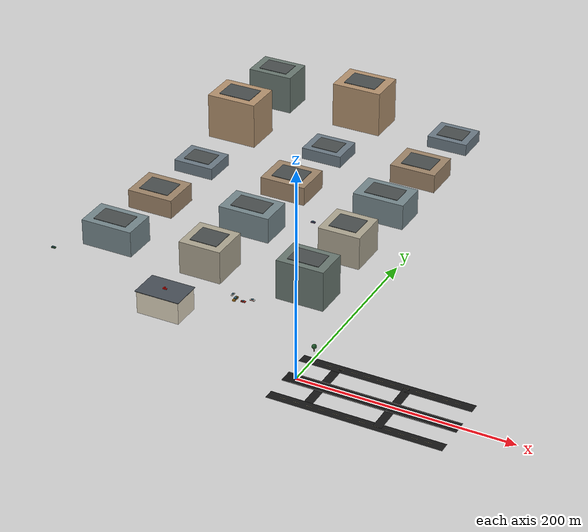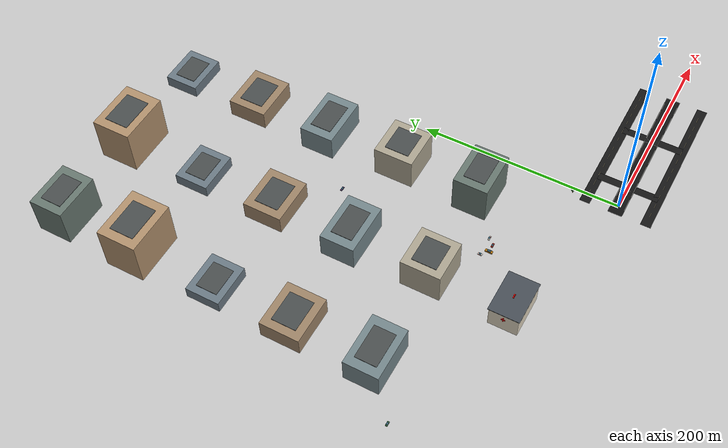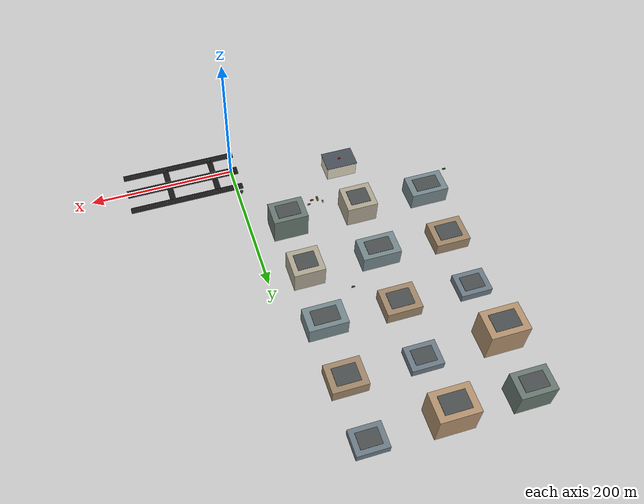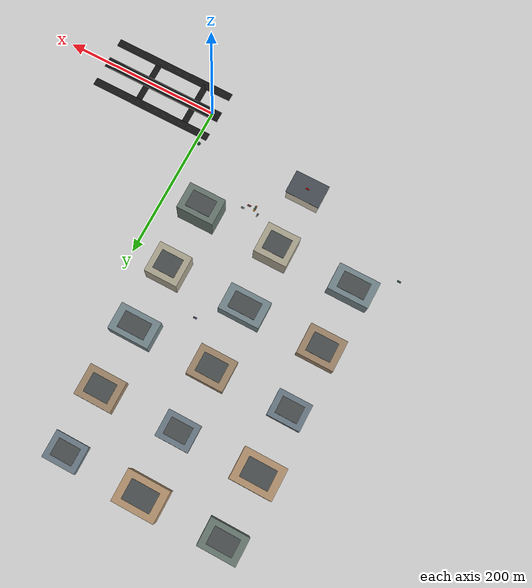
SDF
<sdf version="1.9">
 <world name="smart_city">
  <model name="main_road">
   <static>true</static>
   <link name="road">
    <visual name="asphalt">
     <pose>70 0 0.02 0 0 0</pose>
     <geometry><box><size>160 14 0.1</size></box></geometry>
     <material><ambient>0.07 0.07 0.07 1</ambient><diffuse>0.07 0.07 0.07 1</diffuse></material>
    </visual>
   </link>
  </model>
  <model name="north_road">
   <static>true</static>
   <link name="road">
    <visual name="asphalt">
     <pose>70 30 0.02 0 0 0</pose>
     <geometry><box><size>160 10 0.1</size></box></geometry>
     <material><ambient>0.09 0.09 0.09 1</ambient></material>
    </visual>
   </link>
  </model>
  <model name="south_road">
   <static>true</static>
   <link name="road">
    <visual name="asphalt">
     <pose>70 -30 0.02 0 0 0</pose>
     <geometry><box><size>160 10 0.1</size></box></geometry>
     <material><ambient>0.09 0.09 0.09 1</ambient></material>
    </visual>
   </link>
  </model>
  <model name="north_connector_1">
   <static>true</static>
   <link name="road">
    <visual name="road_visual">
     <pose>25 15 0.02 0 0 1.5708</pose>
     <geometry><box><size>30 8 0.1</size></box></geometry>
     <material><ambient>0.09 0.09 0.09 1</ambient></material>
    </visual>
   </link>
  </model>
  <model name="north_connector_2">
   <static>true</static>
   <link name="road">
    <visual name="road_visual">
     <pose>90 15 0.02 0 0 1.5708</pose>
     <geometry><box><size>30 8 0.1</size></box></geometry>
     <material><ambient>0.09 0.09 0.09 1</ambient></material>
    </visual>
   </link>
  </model>
  <model name="south_connector_1">
   <static>true</static>
   <link name="road">
    <visual name="road_visual">
     <pose>25 -15 0.02 0 0 1.5708</pose>
     <geometry><box><size>30 8 0.1</size></box></geometry>
     <material><ambient>0.09 0.09 0.09 1</ambient></material>
    </visual>
   </link>
  </model>
  <model name="south_connector_2">
   <static>true</static>
   <link name="road">
    <visual name="road_visual">
     <pose>90 -15 0.02 0 0 1.5708</pose>
     <geometry><box><size>30 8 0.1</size></box></geometry>
     <material><ambient>0.09 0.09 0.09 1</ambient></material>
    </visual>
   </link>
  </model>
  <model name="road_markings">
   <static>true</static>
   <link name="paint">
    <visual name="dash_p0_4">
     <pose>4 0 0.075 0 0 0</pose>
     <geometry><box><size>6 0.22 0.01</size></box></geometry>
     <material><ambient>0.88 0.82 0.58 1</ambient><diffuse>0.88 0.82 0.58 1</diffuse></material>
    </visual>
    <visual name="dash_p0_16">
     <pose>16 0 0.075 0 0 0</pose>
     <geometry><box><size>6 0.22 0.01</size></box></geometry>
     <material><ambient>0.88 0.82 0.58 1</ambient><diffuse>0.88 0.82 0.58 1</diffuse></material>
    </visual>
    <visual name="dash_p0_28">
     <pose>28 0 0.075 0 0 0</pose>
     <geometry><box><size>6 0.22 0.01</size></box></geometry>
     <material><ambient>0.88 0.82 0.58 1</ambient><diffuse>0.88 0.82 0.58 1</diffuse></material>
    </visual>
    <visual name="dash_p0_40">
     <pose>40 0 0.075 0 0 0</pose>
     <geometry><box><size>6 0.22 0.01</size></box></geometry>
     <material><ambient>0.88 0.82 0.58 1</ambient><diffuse>0.88 0.82 0.58 1</diffuse></material>
    </visual>
    <visual name="dash_p0_52">
     <pose>52 0 0.075 0 0 0</pose>
     <geometry><box><size>6 0.22 0.01</size></box></geometry>
     <material><ambient>0.88 0.82 0.58 1</ambient><diffuse>0.88 0.82 0.58 1</diffuse></material>
    </visual>
    <visual name="dash_p0_64">
     <pose>64 0 0.075 0 0 0</pose>
     <geometry><box><size>6 0.22 0.01</size></box></geometry>
     <material><ambient>0.88 0.82 0.58 1</ambient><diffuse>0.88 0.82 0.58 1</diffuse></material>
    </visual>
    <visual name="dash_p0_76">
     <pose>76 0 0.075 0 0 0</pose>
     <geometry><box><size>6 0.22 0.01</size></box></geometry>
     <material><ambient>0.88 0.82 0.58 1</ambient><diffuse>0.88 0.82 0.58 1</diffuse></material>
    </visual>
    <visual name="dash_p0_88">
     <pose>88 0 0.075 0 0 0</pose>
     <geometry><box><size>6 0.22 0.01</size></box></geometry>
     <material><ambient>0.88 0.82 0.58 1</ambient><diffuse>0.88 0.82 0.58 1</diffuse></material>
    </visual>
    <visual name="dash_p0_100">
     <pose>100 0 0.075 0 0 0</pose>
     <geometry><box><size>6 0.22 0.01</size></box></geometry>
     <material><ambient>0.88 0.82 0.58 1</ambient><diffuse>0.88 0.82 0.58 1</diffuse></material>
    </visual>
    <visual name="dash_p0_112">
     <pose>112 0 0.075 0 0 0</pose>
     <geometry><box><size>6 0.22 0.01</size></box></geometry>
     <material><ambient>0.88 0.82 0.58 1</ambient><diffuse>0.88 0.82 0.58 1</diffuse></material>
    </visual>
    <visual name="dash_p0_124">
     <pose>124 0 0.075 0 0 0</pose>
     <geometry><box><size>6 0.22 0.01</size></box></geometry>
     <material><ambient>0.88 0.82 0.58 1</ambient><diffuse>0.88 0.82 0.58 1</diffuse></material>
    </visual>
    <visual name="dash_p0_136">
     <pose>136 0 0.075 0 0 0</pose>
     <geometry><box><size>6 0.22 0.01</size></box></geometry>
     <material><ambient>0.88 0.82 0.58 1</ambient><diffuse>0.88 0.82 0.58 1</diffuse></material>
    </visual>
    <visual name="dash_p30_4">
     <pose>4 30 0.075 0 0 0</pose>
     <geometry><box><size>6 0.22 0.01</size></box></geometry>
     <material><ambient>0.88 0.82 0.58 1</ambient><diffuse>0.88 0.82 0.58 1</diffuse></material>
    </visual>
    <visual name="dash_p30_16">
     <pose>16 30 0.075 0 0 0</pose>
     <geometry><box><size>6 0.22 0.01</size></box></geometry>
     <material><ambient>0.88 0.82 0.58 1</ambient><diffuse>0.88 0.82 0.58 1</diffuse></material>
    </visual>
    <visual name="dash_p30_28">
     <pose>28 30 0.075 0 0 0</pose>
     <geometry><box><size>6 0.22 0.01</size></box></geometry>
     <material><ambient>0.88 0.82 0.58 1</ambient><diffuse>0.88 0.82 0.58 1</diffuse></material>
    </visual>
    <visual name="dash_p30_40">
     <pose>40 30 0.075 0 0 0</pose>
     <geometry><box><size>6 0.22 0.01</size></box></geometry>
     <material><ambient>0.88 0.82 0.58 1</ambient><diffuse>0.88 0.82 0.58 1</diffuse></material>
    </visual>
    <visual name="dash_p30_52">
     <pose>52 30 0.075 0 0 0</pose>
     <geometry><box><size>6 0.22 0.01</size></box></geometry>
     <material><ambient>0.88 0.82 0.58 1</ambient><diffuse>0.88 0.82 0.58 1</diffuse></material>
    </visual>
    <visual name="dash_p30_64">
     <pose>64 30 0.075 0 0 0</pose>
     <geometry><box><size>6 0.22 0.01</size></box></geometry>
     <material><ambient>0.88 0.82 0.58 1</ambient><diffuse>0.88 0.82 0.58 1</diffuse></material>
    </visual>
    <visual name="dash_p30_76">
     <pose>76 30 0.075 0 0 0</pose>
     <geometry><box><size>6 0.22 0.01</size></box></geometry>
     <material><ambient>0.88 0.82 0.58 1</ambient><diffuse>0.88 0.82 0.58 1</diffuse></material>
    </visual>
    <visual name="dash_p30_88">
     <pose>88 30 0.075 0 0 0</pose>
     <geometry><box><size>6 0.22 0.01</size></box></geometry>
     <material><ambient>0.88 0.82 0.58 1</ambient><diffuse>0.88 0.82 0.58 1</diffuse></material>
    </visual>
    <visual name="dash_p30_100">
     <pose>100 30 0.075 0 0 0</pose>
     <geometry><box><size>6 0.22 0.01</size></box></geometry>
     <material><ambient>0.88 0.82 0.58 1</ambient><diffuse>0.88 0.82 0.58 1</diffuse></material>
    </visual>
    <visual name="dash_p30_112">
     <pose>112 30 0.075 0 0 0</pose>
     <geometry><box><size>6 0.22 0.01</size></box></geometry>
     <material><ambient>0.88 0.82 0.58 1</ambient><diffuse>0.88 0.82 0.58 1</diffuse></material>
    </visual>
    <visual name="dash_p30_124">
     <pose>124 30 0.075 0 0 0</pose>
     <geometry><box><size>6 0.22 0.01</size></box></geometry>
     <material><ambient>0.88 0.82 0.58 1</ambient><diffuse>0.88 0.82 0.58 1</diffuse></material>
    </visual>
    <visual name="dash_p30_136">
     <pose>136 30 0.075 0 0 0</pose>
     <geometry><box><size>6 0.22 0.01</size></box></geometry>
     <material><ambient>0.88 0.82 0.58 1</ambient><diffuse>0.88 0.82 0.58 1</diffuse></material>
    </visual>
    <visual name="dash_m30_4">
     <pose>4 -30 0.075 0 0 0</pose>
     <geometry><box><size>6 0.22 0.01</size></box></geometry>
     <material><ambient>0.88 0.82 0.58 1</ambient><diffuse>0.88 0.82 0.58 1</diffuse></material>
    </visual>
    <visual name="dash_m30_16">
     <pose>16 -30 0.075 0 0 0</pose>
     <geometry><box><size>6 0.22 0.01</size></box></geometry>
     <material><ambient>0.88 0.82 0.58 1</ambient><diffuse>0.88 0.82 0.58 1</diffuse></material>
    </visual>
    <visual name="dash_m30_28">
     <pose>28 -30 0.075 0 0 0</pose>
     <geometry><box><size>6 0.22 0.01</size></box></geometry>
     <material><ambient>0.88 0.82 0.58 1</ambient><diffuse>0.88 0.82 0.58 1</diffuse></material>
    </visual>
    <visual name="dash_m30_40">
     <pose>40 -30 0.075 0 0 0</pose>
     <geometry><box><size>6 0.22 0.01</size></box></geometry>
     <material><ambient>0.88 0.82 0.58 1</ambient><diffuse>0.88 0.82 0.58 1</diffuse></material>
    </visual>
    <visual name="dash_m30_52">
     <pose>52 -30 0.075 0 0 0</pose>
     <geometry><box><size>6 0.22 0.01</size></box></geometry>
     <material><ambient>0.88 0.82 0.58 1</ambient><diffuse>0.88 0.82 0.58 1</diffuse></material>
    </visual>
    <visual name="dash_m30_64">
     <pose>64 -30 0.075 0 0 0</pose>
     <geometry><box><size>6 0.22 0.01</size></box></geometry>
     <material><ambient>0.88 0.82 0.58 1</ambient><diffuse>0.88 0.82 0.58 1</diffuse></material>
    </visual>
    <visual name="dash_m30_76">
     <pose>76 -30 0.075 0 0 0</pose>
     <geometry><box><size>6 0.22 0.01</size></box></geometry>
     <material><ambient>0.88 0.82 0.58 1</ambient><diffuse>0.88 0.82 0.58 1</diffuse></material>
    </visual>
    <visual name="dash_m30_88">
     <pose>88 -30 0.075 0 0 0</pose>
     <geometry><box><size>6 0.22 0.01</size></box></geometry>
     <material><ambient>0.88 0.82 0.58 1</ambient><diffuse>0.88 0.82 0.58 1</diffuse></material>
    </visual>
    <visual name="dash_m30_100">
     <pose>100 -30 0.075 0 0 0</pose>
     <geometry><box><size>6 0.22 0.01</size></box></geometry>
     <material><ambient>0.88 0.82 0.58 1</ambient><diffuse>0.88 0.82 0.58 1</diffuse></material>
    </visual>
    <visual name="dash_m30_112">
     <pose>112 -30 0.075 0 0 0</pose>
     <geometry><box><size>6 0.22 0.01</size></box></geometry>
     <material><ambient>0.88 0.82 0.58 1</ambient><diffuse>0.88 0.82 0.58 1</diffuse></material>
    </visual>
    <visual name="dash_m30_124">
     <pose>124 -30 0.075 0 0 0</pose>
     <geometry><box><size>6 0.22 0.01</size></box></geometry>
     <material><ambient>0.88 0.82 0.58 1</ambient><diffuse>0.88 0.82 0.58 1</diffuse></material>
    </visual>
    <visual name="dash_m30_136">
     <pose>136 -30 0.075 0 0 0</pose>
     <geometry><box><size>6 0.22 0.01</size></box></geometry>
     <material><ambient>0.88 0.82 0.58 1</ambient><diffuse>0.88 0.82 0.58 1</diffuse></material>
    </visual>
    <visual name="main_edge_s">
     <pose>70 -6.5 0.075 0 0 0</pose>
     <geometry><box><size>145 0.18 0.01</size></box></geometry>
     <material><ambient>0.78 0.78 0.72 1</ambient><diffuse>0.78 0.78 0.72 1</diffuse></material>
    </visual>
    <visual name="main_edge_n">
     <pose>70 6.5 0.075 0 0 0</pose>
     <geometry><box><size>145 0.18 0.01</size></box></geometry>
     <material><ambient>0.78 0.78 0.72 1</ambient><diffuse>0.78 0.78 0.72 1</diffuse></material>
    </visual>
   </link>
  </model>
  <model name="street_tree_01">
   <static>true</static>
   <pose>-5 44 0 0 0 0</pose>
   <link name="tree">
    <visual name="trunk">
     <pose>0 0 2 0 0 0</pose>
     <geometry><cylinder><radius>0.35</radius><length>4</length></cylinder></geometry>
     <material><ambient>0.30 0.18 0.08 1</ambient><diffuse>0.30 0.18 0.08 1</diffuse></material>
    </visual>
    <visual name="crown">
     <pose>0 0 5 0 0 0</pose>
     <geometry><sphere><radius>2.2</radius></sphere></geometry>
     <material><ambient>0.12 0.34 0.16 1</ambient><diffuse>0.12 0.34 0.16 1</diffuse></material>
    </visual>
   </link>
  </model>
  <model name="chennai_block_056">
   <static>true</static>
   <pose>-250 120 0 0 0 0</pose>
   <link name="building">
    <collision name="structure">
     <pose>0 0 13.0 0 0 0</pose>
     <geometry><box><size>52 34 26</size></box></geometry>
    </collision>
    <visual name="facade">
     <pose>0 0 13.0 0 0 0</pose>
     <geometry><box><size>52 34 26</size></box></geometry>
     <material><ambient>0.46 0.53 0.55 1</ambient><diffuse>0.46 0.53 0.55 1</diffuse></material>
    </visual>
    <visual name="roof">
     <pose>0 0 26.3 0 0 0</pose>
     <geometry><box><size>34.3 21.1 0.6</size></box></geometry>
     <material><ambient>0.29 0.31 0.31 1</ambient><diffuse>0.29 0.31 0.31 1</diffuse></material>
    </visual>
   </link>
  </model>
  <model name="chennai_block_057">
   <static>true</static>
   <pose>-150 120 0 0 0 0</pose>
   <link name="building">
    <collision name="structure">
     <pose>0 0 16.5 0 0 0</pose>
     <geometry><box><size>42 39 33</size></box></geometry>
    </collision>
    <visual name="facade">
     <pose>0 0 16.5 0 0 0</pose>
     <geometry><box><size>42 39 33</size></box></geometry>
     <material><ambient>0.68 0.65 0.57 1</ambient><diffuse>0.68 0.65 0.57 1</diffuse></material>
    </visual>
    <visual name="roof">
     <pose>0 0 33.3 0 0 0</pose>
     <geometry><box><size>27.7 24.2 0.6</size></box></geometry>
     <material><ambient>0.29 0.31 0.31 1</ambient><diffuse>0.29 0.31 0.31 1</diffuse></material>
    </visual>
   </link>
  </model>
  <model name="chennai_block_058">
   <static>true</static>
   <pose>-50 120 0 0 0 0</pose>
   <link name="building">
    <collision name="structure">
     <pose>0 0 20.0 0 0 0</pose>
     <geometry><box><size>47 34 40</size></box></geometry>
    </collision>
    <visual name="facade">
     <pose>0 0 20.0 0 0 0</pose>
     <geometry><box><size>47 34 40</size></box></geometry>
     <material><ambient>0.41 0.47 0.44 1</ambient><diffuse>0.41 0.47 0.44 1</diffuse></material>
    </visual>
    <visual name="roof">
     <pose>0 0 40.3 0 0 0</pose>
     <geometry><box><size>31.0 21.1 0.6</size></box></geometry>
     <material><ambient>0.29 0.31 0.31 1</ambient><diffuse>0.29 0.31 0.31 1</diffuse></material>
    </visual>
   </link>
  </model>
  <model name="chennai_block_067">
   <static>true</static>
   <pose>-250 200 0 0 0 0</pose>
   <link name="building">
    <collision name="structure">
     <pose>0 0 9.5 0 0 0</pose>
     <geometry><box><size>47 39 19</size></box></geometry>
    </collision>
    <visual name="facade">
     <pose>0 0 9.5 0 0 0</pose>
     <geometry><box><size>47 39 19</size></box></geometry>
     <material><ambient>0.62 0.52 0.41 1</ambient><diffuse>0.62 0.52 0.41 1</diffuse></material>
    </visual>
    <visual name="roof">
     <pose>0 0 19.3 0 0 0</pose>
     <geometry><box><size>31.0 24.2 0.6</size></box></geometry>
     <material><ambient>0.29 0.31 0.31 1</ambient><diffuse>0.29 0.31 0.31 1</diffuse></material>
    </visual>
   </link>
  </model>
  <model name="chennai_block_068">
   <static>true</static>
   <pose>-150 200 0 0 0 0</pose>
   <link name="building">
    <collision name="structure">
     <pose>0 0 13.0 0 0 0</pose>
     <geometry><box><size>52 34 26</size></box></geometry>
    </collision>
    <visual name="facade">
     <pose>0 0 13.0 0 0 0</pose>
     <geometry><box><size>52 34 26</size></box></geometry>
     <material><ambient>0.46 0.53 0.55 1</ambient><diffuse>0.46 0.53 0.55 1</diffuse></material>
    </visual>
    <visual name="roof">
     <pose>0 0 26.3 0 0 0</pose>
     <geometry><box><size>34.3 21.1 0.6</size></box></geometry>
     <material><ambient>0.29 0.31 0.31 1</ambient><diffuse>0.29 0.31 0.31 1</diffuse></material>
    </visual>
   </link>
  </model>
  <model name="chennai_block_069">
   <static>true</static>
   <pose>-50 200 0 0 0 0</pose>
   <link name="building">
    <collision name="structure">
     <pose>0 0 16.5 0 0 0</pose>
     <geometry><box><size>42 39 33</size></box></geometry>
    </collision>
    <visual name="facade">
     <pose>0 0 16.5 0 0 0</pose>
     <geometry><box><size>42 39 33</size></box></geometry>
     <material><ambient>0.68 0.65 0.57 1</ambient><diffuse>0.68 0.65 0.57 1</diffuse></material>
    </visual>
    <visual name="roof">
     <pose>0 0 33.3 0 0 0</pose>
     <geometry><box><size>27.7 24.2 0.6</size></box></geometry>
     <material><ambient>0.29 0.31 0.31 1</ambient><diffuse>0.29 0.31 0.31 1</diffuse></material>
    </visual>
   </link>
  </model>
  <model name="chennai_block_078">
   <static>true</static>
   <pose>-250 280 0 0 0 0</pose>
   <link name="building">
    <collision name="structure">
     <pose>0 0 6.0 0 0 0</pose>
     <geometry><box><size>42 34 12</size></box></geometry>
    </collision>
    <visual name="facade">
     <pose>0 0 6.0 0 0 0</pose>
     <geometry><box><size>42 34 12</size></box></geometry>
     <material><ambient>0.42 0.48 0.52 1</ambient><diffuse>0.42 0.48 0.52 1</diffuse></material>
    </visual>
    <visual name="roof">
     <pose>0 0 12.3 0 0 0</pose>
     <geometry><box><size>27.7 21.1 0.6</size></box></geometry>
     <material><ambient>0.29 0.31 0.31 1</ambient><diffuse>0.29 0.31 0.31 1</diffuse></material>
    </visual>
   </link>
  </model>
  <model name="chennai_block_079">
   <static>true</static>
   <pose>-150 280 0 0 0 0</pose>
   <link name="building">
    <collision name="structure">
     <pose>0 0 9.5 0 0 0</pose>
     <geometry><box><size>47 39 19</size></box></geometry>
    </collision>
    <visual name="facade">
     <pose>0 0 9.5 0 0 0</pose>
     <geometry><box><size>47 39 19</size></box></geometry>
     <material><ambient>0.62 0.52 0.41 1</ambient><diffuse>0.62 0.52 0.41 1</diffuse></material>
    </visual>
    <visual name="roof">
     <pose>0 0 19.3 0 0 0</pose>
     <geometry><box><size>31.0 24.2 0.6</size></box></geometry>
     <material><ambient>0.29 0.31 0.31 1</ambient><diffuse>0.29 0.31 0.31 1</diffuse></material>
    </visual>
   </link>
  </model>
  <model name="chennai_block_080">
   <static>true</static>
   <pose>-50 280 0 0 0 0</pose>
   <link name="building">
    <collision name="structure">
     <pose>0 0 13.0 0 0 0</pose>
     <geometry><box><size>52 34 26</size></box></geometry>
    </collision>
    <visual name="facade">
     <pose>0 0 13.0 0 0 0</pose>
     <geometry><box><size>52 34 26</size></box></geometry>
     <material><ambient>0.46 0.53 0.55 1</ambient><diffuse>0.46 0.53 0.55 1</diffuse></material>
    </visual>
    <visual name="roof">
     <pose>0 0 26.3 0 0 0</pose>
     <geometry><box><size>34.3 21.1 0.6</size></box></geometry>
     <material><ambient>0.29 0.31 0.31 1</ambient><diffuse>0.29 0.31 0.31 1</diffuse></material>
    </visual>
   </link>
  </model>
  <model name="chennai_block_089">
   <static>true</static>
   <pose>-250 360 0 0 0 0</pose>
   <link name="building">
    <collision name="structure">
     <pose>0 0 23.5 0 0 0</pose>
     <geometry><box><size>52 39 47</size></box></geometry>
    </collision>
    <visual name="facade">
     <pose>0 0 23.5 0 0 0</pose>
     <geometry><box><size>52 39 47</size></box></geometry>
     <material><ambient>0.70 0.57 0.43 1</ambient><diffuse>0.70 0.57 0.43 1</diffuse></material>
    </visual>
    <visual name="roof">
     <pose>0 0 47.3 0 0 0</pose>
     <geometry><box><size>34.3 24.2 0.6</size></box></geometry>
     <material><ambient>0.29 0.31 0.31 1</ambient><diffuse>0.29 0.31 0.31 1</diffuse></material>
    </visual>
   </link>
  </model>
  <model name="chennai_block_090">
   <static>true</static>
   <pose>-150 360 0 0 0 0</pose>
   <link name="building">
    <collision name="structure">
     <pose>0 0 6.0 0 0 0</pose>
     <geometry><box><size>42 34 12</size></box></geometry>
    </collision>
    <visual name="facade">
     <pose>0 0 6.0 0 0 0</pose>
     <geometry><box><size>42 34 12</size></box></geometry>
     <material><ambient>0.42 0.48 0.52 1</ambient><diffuse>0.42 0.48 0.52 1</diffuse></material>
    </visual>
    <visual name="roof">
     <pose>0 0 12.3 0 0 0</pose>
     <geometry><box><size>27.7 21.1 0.6</size></box></geometry>
     <material><ambient>0.29 0.31 0.31 1</ambient><diffuse>0.29 0.31 0.31 1</diffuse></material>
    </visual>
   </link>
  </model>
  <model name="chennai_block_091">
   <static>true</static>
   <pose>-50 360 0 0 0 0</pose>
   <link name="building">
    <collision name="structure">
     <pose>0 0 9.5 0 0 0</pose>
     <geometry><box><size>47 39 19</size></box></geometry>
    </collision>
    <visual name="facade">
     <pose>0 0 9.5 0 0 0</pose>
     <geometry><box><size>47 39 19</size></box></geometry>
     <material><ambient>0.62 0.52 0.41 1</ambient><diffuse>0.62 0.52 0.41 1</diffuse></material>
    </visual>
    <visual name="roof">
     <pose>0 0 19.3 0 0 0</pose>
     <geometry><box><size>31.0 24.2 0.6</size></box></geometry>
     <material><ambient>0.29 0.31 0.31 1</ambient><diffuse>0.29 0.31 0.31 1</diffuse></material>
    </visual>
   </link>
  </model>
  <model name="chennai_block_100">
   <static>true</static>
   <pose>-250 440 0 0 0 0</pose>
   <link name="building">
    <collision name="structure">
     <pose>0 0 20.0 0 0 0</pose>
     <geometry><box><size>47 34 40</size></box></geometry>
    </collision>
    <visual name="facade">
     <pose>0 0 20.0 0 0 0</pose>
     <geometry><box><size>47 34 40</size></box></geometry>
     <material><ambient>0.41 0.47 0.44 1</ambient><diffuse>0.41 0.47 0.44 1</diffuse></material>
    </visual>
    <visual name="roof">
     <pose>0 0 40.3 0 0 0</pose>
     <geometry><box><size>31.0 21.1 0.6</size></box></geometry>
     <material><ambient>0.29 0.31 0.31 1</ambient><diffuse>0.29 0.31 0.31 1</diffuse></material>
    </visual>
   </link>
  </model>
  <model name="chennai_block_101">
   <static>true</static>
   <pose>-150 440 0 0 0 0</pose>
   <link name="building">
    <collision name="structure">
     <pose>0 0 23.5 0 0 0</pose>
     <geometry><box><size>52 39 47</size></box></geometry>
    </collision>
    <visual name="facade">
     <pose>0 0 23.5 0 0 0</pose>
     <geometry><box><size>52 39 47</size></box></geometry>
     <material><ambient>0.70 0.57 0.43 1</ambient><diffuse>0.70 0.57 0.43 1</diffuse></material>
    </visual>
    <visual name="roof">
     <pose>0 0 47.3 0 0 0</pose>
     <geometry><box><size>34.3 24.2 0.6</size></box></geometry>
     <material><ambient>0.29 0.31 0.31 1</ambient><diffuse>0.29 0.31 0.31 1</diffuse></material>
    </visual>
   </link>
  </model>
  <model name="chennai_block_102">
   <static>true</static>
   <pose>-50 440 0 0 0 0</pose>
   <link name="building">
    <collision name="structure">
     <pose>0 0 6.0 0 0 0</pose>
     <geometry><box><size>42 34 12</size></box></geometry>
    </collision>
    <visual name="facade">
     <pose>0 0 6.0 0 0 0</pose>
     <geometry><box><size>42 34 12</size></box></geometry>
     <material><ambient>0.42 0.48 0.52 1</ambient><diffuse>0.42 0.48 0.52 1</diffuse></material>
    </visual>
    <visual name="roof">
     <pose>0 0 12.3 0 0 0</pose>
     <geometry><box><size>27.7 21.1 0.6</size></box></geometry>
     <material><ambient>0.29 0.31 0.31 1</ambient><diffuse>0.29 0.31 0.31 1</diffuse></material>
    </visual>
   </link>
  </model>
  <model name="chennai_traffic_10">
   <static>false</static>
   <pose>-296 84 0 0 0 0.0000</pose>
   <link name="base_link">
    <pose>0 0 0.72 0 0 0</pose>
    <inertial>
     <mass>650</mass>
     <inertia><ixx>487.5</ixx><iyy>715.0</iyy><izz>910.0</izz><ixy>0</ixy><ixz>0</ixz><iyz>0</iyz></inertia>
    </inertial>
    <collision name="body_collision"><geometry><box><size>4.5 1.95 0.96</size></box></geometry></collision>
    <visual name="body">
     <geometry><box><size>4.5 1.95 0.96</size></box></geometry>
     <material><ambient>0.18 0.37 0.22 1</ambient><diffuse>0.18 0.37 0.22 1</diffuse></material>
    </visual>
    <visual name="cabin">
     <pose>-0.15 0 0.63 0 0 0</pose>
     <geometry><box><size>2.16 1.60 0.63</size></box></geometry>
     <material><ambient>0.20 0.35 0.42 1</ambient><diffuse>0.20 0.35 0.42 1</diffuse></material>
    </visual>
    <collision name="wheel_collision_r_r">
     <pose>-1.40 -0.90 -0.38 1.5708 0 0</pose>
     <geometry><cylinder><radius>0.34</radius><length>0.20</length></cylinder></geometry>
     <surface><friction><ode><mu>0.004</mu><mu2>0.004</mu2></ode></friction></surface>
    </collision>
    <visual name="wheel_r_r">
     <pose>-1.40 -0.90 -0.38 1.5708 0 0</pose>
     <geometry><cylinder><radius>0.34</radius><length>0.20</length></cylinder></geometry>
     <material><ambient>0.055 0.055 0.06 1</ambient><diffuse>0.055 0.055 0.06 1</diffuse></material>
    </visual>
    <collision name="wheel_collision_r_l">
     <pose>-1.40 0.90 -0.38 1.5708 0 0</pose>
     <geometry><cylinder><radius>0.34</radius><length>0.20</length></cylinder></geometry>
     <surface><friction><ode><mu>0.004</mu><mu2>0.004</mu2></ode></friction></surface>
    </collision>
    <visual name="wheel_r_l">
     <pose>-1.40 0.90 -0.38 1.5708 0 0</pose>
     <geometry><cylinder><radius>0.34</radius><length>0.20</length></cylinder></geometry>
     <material><ambient>0.055 0.055 0.06 1</ambient><diffuse>0.055 0.055 0.06 1</diffuse></material>
    </visual>
    <collision name="wheel_collision_f_r">
     <pose>1.40 -0.90 -0.38 1.5708 0 0</pose>
     <geometry><cylinder><radius>0.34</radius><length>0.20</length></cylinder></geometry>
     <surface><friction><ode><mu>0.004</mu><mu2>0.004</mu2></ode></friction></surface>
    </collision>
    <visual name="wheel_f_r">
     <pose>1.40 -0.90 -0.38 1.5708 0 0</pose>
     <geometry><cylinder><radius>0.34</radius><length>0.20</length></cylinder></geometry>
     <material><ambient>0.055 0.055 0.06 1</ambient><diffuse>0.055 0.055 0.06 1</diffuse></material>
    </visual>
    <collision name="wheel_collision_f_l">
     <pose>1.40 0.90 -0.38 1.5708 0 0</pose>
     <geometry><cylinder><radius>0.34</radius><length>0.20</length></cylinder></geometry>
     <surface><friction><ode><mu>0.004</mu><mu2>0.004</mu2></ode></friction></surface>
    </collision>
    <visual name="wheel_f_l">
     <pose>1.40 0.90 -0.38 1.5708 0 0</pose>
     <geometry><cylinder><radius>0.34</radius><length>0.20</length></cylinder></geometry>
     <material><ambient>0.055 0.055 0.06 1</ambient><diffuse>0.055 0.055 0.06 1</diffuse></material>
    </visual>
   </link>
   <plugin filename="gz-sim-trajectory-follower-system" name="gz::sim::systems::TrajectoryFollower">
    <link_name>base_link</link_name>
    <loop>true</loop>
    <range_tolerance>3.0</range_tolerance>
    <bearing_tolerance>8.0</bearing_tolerance>
    <force>90</force>
    <torque>220</torque>
    <waypoints>
     <waypoint>-296 84</waypoint>
     <waypoint>-104 84</waypoint>
     <waypoint>-104 236</waypoint>
     <waypoint>-296 236</waypoint>
    </waypoints>
   </plugin>
  </model>
  <model name="chennai_traffic_11">
   <static>false</static>
   <pose>-104 84 0 0 0 1.5708</pose>
   <link name="base_link">
    <pose>0 0 1.25 0 0 0</pose>
    <inertial>
     <mass>900</mass>
     <inertia><ixx>675.0</ixx><iyy>990.0</iyy><izz>1260.0</izz><ixy>0</ixy><ixz>0</ixz><iyz>0</iyz></inertia>
    </inertial>
    <collision name="body_collision"><geometry><box><size>7.2 2.35 1.57</size></box></geometry></collision>
    <visual name="body">
     <geometry><box><size>7.2 2.35 1.57</size></box></geometry>
     <material><ambient>0.72 0.47 0.08 1</ambient><diffuse>0.72 0.47 0.08 1</diffuse></material>
    </visual>
    <visual name="cabin">
     <pose>-0.15 0 1.03 0 0 0</pose>
     <geometry><box><size>3.456 1.93 1.03</size></box></geometry>
     <material><ambient>0.20 0.35 0.42 1</ambient><diffuse>0.20 0.35 0.42 1</diffuse></material>
    </visual>
    <visual name="bus_window_-2_7">
     <pose>-2.7 -1.200 0.92 0 0 0</pose>
     <geometry><box><size>0.72 0.05 0.72</size></box></geometry>
     <material><ambient>0.16 0.46 0.58 1</ambient><diffuse>0.16 0.46 0.58 1</diffuse></material>
    </visual>
    <visual name="bus_window_-1_65">
     <pose>-1.65 -1.200 0.92 0 0 0</pose>
     <geometry><box><size>0.72 0.05 0.72</size></box></geometry>
     <material><ambient>0.16 0.46 0.58 1</ambient><diffuse>0.16 0.46 0.58 1</diffuse></material>
    </visual>
    <visual name="bus_window_-0_6">
     <pose>-0.6 -1.200 0.92 0 0 0</pose>
     <geometry><box><size>0.72 0.05 0.72</size></box></geometry>
     <material><ambient>0.16 0.46 0.58 1</ambient><diffuse>0.16 0.46 0.58 1</diffuse></material>
    </visual>
    <visual name="bus_window_0_6">
     <pose>0.6 -1.200 0.92 0 0 0</pose>
     <geometry><box><size>0.72 0.05 0.72</size></box></geometry>
     <material><ambient>0.16 0.46 0.58 1</ambient><diffuse>0.16 0.46 0.58 1</diffuse></material>
    </visual>
    <visual name="bus_window_1_65">
     <pose>1.65 -1.200 0.92 0 0 0</pose>
     <geometry><box><size>0.72 0.05 0.72</size></box></geometry>
     <material><ambient>0.16 0.46 0.58 1</ambient><diffuse>0.16 0.46 0.58 1</diffuse></material>
    </visual>
    <visual name="bus_window_2_7">
     <pose>2.7 -1.200 0.92 0 0 0</pose>
     <geometry><box><size>0.72 0.05 0.72</size></box></geometry>
     <material><ambient>0.16 0.46 0.58 1</ambient><diffuse>0.16 0.46 0.58 1</diffuse></material>
    </visual>
    <collision name="wheel_collision_r_r">
     <pose>-2.23 -1.08 -0.80 1.5708 0 0</pose>
     <geometry><cylinder><radius>0.45</radius><length>0.20</length></cylinder></geometry>
     <surface><friction><ode><mu>0.004</mu><mu2>0.004</mu2></ode></friction></surface>
    </collision>
    <visual name="wheel_r_r">
     <pose>-2.23 -1.08 -0.80 1.5708 0 0</pose>
     <geometry><cylinder><radius>0.45</radius><length>0.20</length></cylinder></geometry>
     <material><ambient>0.055 0.055 0.06 1</ambient><diffuse>0.055 0.055 0.06 1</diffuse></material>
    </visual>
    <collision name="wheel_collision_r_l">
     <pose>-2.23 1.08 -0.80 1.5708 0 0</pose>
     <geometry><cylinder><radius>0.45</radius><length>0.20</length></cylinder></geometry>
     <surface><friction><ode><mu>0.004</mu><mu2>0.004</mu2></ode></friction></surface>
    </collision>
    <visual name="wheel_r_l">
     <pose>-2.23 1.08 -0.80 1.5708 0 0</pose>
     <geometry><cylinder><radius>0.45</radius><length>0.20</length></cylinder></geometry>
     <material><ambient>0.055 0.055 0.06 1</ambient><diffuse>0.055 0.055 0.06 1</diffuse></material>
    </visual>
    <collision name="wheel_collision_f_r">
     <pose>2.23 -1.08 -0.80 1.5708 0 0</pose>
     <geometry><cylinder><radius>0.45</radius><length>0.20</length></cylinder></geometry>
     <surface><friction><ode><mu>0.004</mu><mu2>0.004</mu2></ode></friction></surface>
    </collision>
    <visual name="wheel_f_r">
     <pose>2.23 -1.08 -0.80 1.5708 0 0</pose>
     <geometry><cylinder><radius>0.45</radius><length>0.20</length></cylinder></geometry>
     <material><ambient>0.055 0.055 0.06 1</ambient><diffuse>0.055 0.055 0.06 1</diffuse></material>
    </visual>
    <collision name="wheel_collision_f_l">
     <pose>2.23 1.08 -0.80 1.5708 0 0</pose>
     <geometry><cylinder><radius>0.45</radius><length>0.20</length></cylinder></geometry>
     <surface><friction><ode><mu>0.004</mu><mu2>0.004</mu2></ode></friction></surface>
    </collision>
    <visual name="wheel_f_l">
     <pose>2.23 1.08 -0.80 1.5708 0 0</pose>
     <geometry><cylinder><radius>0.45</radius><length>0.20</length></cylinder></geometry>
     <material><ambient>0.055 0.055 0.06 1</ambient><diffuse>0.055 0.055 0.06 1</diffuse></material>
    </visual>
   </link>
   <plugin filename="gz-sim-trajectory-follower-system" name="gz::sim::systems::TrajectoryFollower">
    <link_name>base_link</link_name>
    <loop>true</loop>
    <range_tolerance>3.0</range_tolerance>
    <bearing_tolerance>8.0</bearing_tolerance>
    <force>90</force>
    <torque>220</torque>
    <waypoints>
     <waypoint>-104 84</waypoint>
     <waypoint>-104 236</waypoint>
     <waypoint>-296 236</waypoint>
     <waypoint>-296 84</waypoint>
    </waypoints>
   </plugin>
  </model>
  <model name="chennai_traffic_12">
   <static>false</static>
   <pose>-104 236 0 0 0 3.1416</pose>
   <link name="base_link">
    <pose>0 0 0.72 0 0 0</pose>
    <inertial>
     <mass>650</mass>
     <inertia><ixx>487.5</ixx><iyy>715.0</iyy><izz>910.0</izz><ixy>0</ixy><ixz>0</ixz><iyz>0</iyz></inertia>
    </inertial>
    <collision name="body_collision"><geometry><box><size>4.5 1.95 0.96</size></box></geometry></collision>
    <visual name="body">
     <geometry><box><size>4.5 1.95 0.96</size></box></geometry>
     <material><ambient>0.34 0.28 0.45 1</ambient><diffuse>0.34 0.28 0.45 1</diffuse></material>
    </visual>
    <visual name="cabin">
     <pose>-0.15 0 0.63 0 0 0</pose>
     <geometry><box><size>2.16 1.60 0.63</size></box></geometry>
     <material><ambient>0.20 0.35 0.42 1</ambient><diffuse>0.20 0.35 0.42 1</diffuse></material>
    </visual>
    <collision name="wheel_collision_r_r">
     <pose>-1.40 -0.90 -0.38 1.5708 0 0</pose>
     <geometry><cylinder><radius>0.34</radius><length>0.20</length></cylinder></geometry>
     <surface><friction><ode><mu>0.004</mu><mu2>0.004</mu2></ode></friction></surface>
    </collision>
    <visual name="wheel_r_r">
     <pose>-1.40 -0.90 -0.38 1.5708 0 0</pose>
     <geometry><cylinder><radius>0.34</radius><length>0.20</length></cylinder></geometry>
     <material><ambient>0.055 0.055 0.06 1</ambient><diffuse>0.055 0.055 0.06 1</diffuse></material>
    </visual>
    <collision name="wheel_collision_r_l">
     <pose>-1.40 0.90 -0.38 1.5708 0 0</pose>
     <geometry><cylinder><radius>0.34</radius><length>0.20</length></cylinder></geometry>
     <surface><friction><ode><mu>0.004</mu><mu2>0.004</mu2></ode></friction></surface>
    </collision>
    <visual name="wheel_r_l">
     <pose>-1.40 0.90 -0.38 1.5708 0 0</pose>
     <geometry><cylinder><radius>0.34</radius><length>0.20</length></cylinder></geometry>
     <material><ambient>0.055 0.055 0.06 1</ambient><diffuse>0.055 0.055 0.06 1</diffuse></material>
    </visual>
    <collision name="wheel_collision_f_r">
     <pose>1.40 -0.90 -0.38 1.5708 0 0</pose>
     <geometry><cylinder><radius>0.34</radius><length>0.20</length></cylinder></geometry>
     <surface><friction><ode><mu>0.004</mu><mu2>0.004</mu2></ode></friction></surface>
    </collision>
    <visual name="wheel_f_r">
     <pose>1.40 -0.90 -0.38 1.5708 0 0</pose>
     <geometry><cylinder><radius>0.34</radius><length>0.20</length></cylinder></geometry>
     <material><ambient>0.055 0.055 0.06 1</ambient><diffuse>0.055 0.055 0.06 1</diffuse></material>
    </visual>
    <collision name="wheel_collision_f_l">
     <pose>1.40 0.90 -0.38 1.5708 0 0</pose>
     <geometry><cylinder><radius>0.34</radius><length>0.20</length></cylinder></geometry>
     <surface><friction><ode><mu>0.004</mu><mu2>0.004</mu2></ode></friction></surface>
    </collision>
    <visual name="wheel_f_l">
     <pose>1.40 0.90 -0.38 1.5708 0 0</pose>
     <geometry><cylinder><radius>0.34</radius><length>0.20</length></cylinder></geometry>
     <material><ambient>0.055 0.055 0.06 1</ambient><diffuse>0.055 0.055 0.06 1</diffuse></material>
    </visual>
   </link>
   <plugin filename="gz-sim-trajectory-follower-system" name="gz::sim::systems::TrajectoryFollower">
    <link_name>base_link</link_name>
    <loop>true</loop>
    <range_tolerance>3.0</range_tolerance>
    <bearing_tolerance>8.0</bearing_tolerance>
    <force>90</force>
    <torque>220</torque>
    <waypoints>
     <waypoint>-104 236</waypoint>
     <waypoint>-296 236</waypoint>
     <waypoint>-296 84</waypoint>
     <waypoint>-104 84</waypoint>
    </waypoints>
   </plugin>
  </model>
  <model name="chennai_traffic_13">
   <static>false</static>
   <pose>-96 84 0 0 0 0.0000</pose>
   <link name="base_link">
    <pose>0 0 0.72 0 0 0</pose>
    <inertial>
     <mass>650</mass>
     <inertia><ixx>487.5</ixx><iyy>715.0</iyy><izz>910.0</izz><ixy>0</ixy><ixz>0</ixz><iyz>0</iyz></inertia>
    </inertial>
    <collision name="body_collision"><geometry><box><size>4.5 1.95 0.96</size></box></geometry></collision>
    <visual name="body">
     <geometry><box><size>4.5 1.95 0.96</size></box></geometry>
     <material><ambient>0.72 0.14 0.08 1</ambient><diffuse>0.72 0.14 0.08 1</diffuse></material>
    </visual>
    <visual name="cabin">
     <pose>-0.15 0 0.63 0 0 0</pose>
     <geometry><box><size>2.16 1.60 0.63</size></box></geometry>
     <material><ambient>0.20 0.35 0.42 1</ambient><diffuse>0.20 0.35 0.42 1</diffuse></material>
    </visual>
    <collision name="wheel_collision_r_r">
     <pose>-1.40 -0.90 -0.38 1.5708 0 0</pose>
     <geometry><cylinder><radius>0.34</radius><length>0.20</length></cylinder></geometry>
     <surface><friction><ode><mu>0.004</mu><mu2>0.004</mu2></ode></friction></surface>
    </collision>
    <visual name="wheel_r_r">
     <pose>-1.40 -0.90 -0.38 1.5708 0 0</pose>
     <geometry><cylinder><radius>0.34</radius><length>0.20</length></cylinder></geometry>
     <material><ambient>0.055 0.055 0.06 1</ambient><diffuse>0.055 0.055 0.06 1</diffuse></material>
    </visual>
    <collision name="wheel_collision_r_l">
     <pose>-1.40 0.90 -0.38 1.5708 0 0</pose>
     <geometry><cylinder><radius>0.34</radius><length>0.20</length></cylinder></geometry>
     <surface><friction><ode><mu>0.004</mu><mu2>0.004</mu2></ode></friction></surface>
    </collision>
    <visual name="wheel_r_l">
     <pose>-1.40 0.90 -0.38 1.5708 0 0</pose>
     <geometry><cylinder><radius>0.34</radius><length>0.20</length></cylinder></geometry>
     <material><ambient>0.055 0.055 0.06 1</ambient><diffuse>0.055 0.055 0.06 1</diffuse></material>
    </visual>
    <collision name="wheel_collision_f_r">
     <pose>1.40 -0.90 -0.38 1.5708 0 0</pose>
     <geometry><cylinder><radius>0.34</radius><length>0.20</length></cylinder></geometry>
     <surface><friction><ode><mu>0.004</mu><mu2>0.004</mu2></ode></friction></surface>
    </collision>
    <visual name="wheel_f_r">
     <pose>1.40 -0.90 -0.38 1.5708 0 0</pose>
     <geometry><cylinder><radius>0.34</radius><length>0.20</length></cylinder></geometry>
     <material><ambient>0.055 0.055 0.06 1</ambient><diffuse>0.055 0.055 0.06 1</diffuse></material>
    </visual>
    <collision name="wheel_collision_f_l">
     <pose>1.40 0.90 -0.38 1.5708 0 0</pose>
     <geometry><cylinder><radius>0.34</radius><length>0.20</length></cylinder></geometry>
     <surface><friction><ode><mu>0.004</mu><mu2>0.004</mu2></ode></friction></surface>
    </collision>
    <visual name="wheel_f_l">
     <pose>1.40 0.90 -0.38 1.5708 0 0</pose>
     <geometry><cylinder><radius>0.34</radius><length>0.20</length></cylinder></geometry>
     <material><ambient>0.055 0.055 0.06 1</ambient><diffuse>0.055 0.055 0.06 1</diffuse></material>
    </visual>
   </link>
   <plugin filename="gz-sim-trajectory-follower-system" name="gz::sim::systems::TrajectoryFollower">
    <link_name>base_link</link_name>
    <loop>true</loop>
    <range_tolerance>3.0</range_tolerance>
    <bearing_tolerance>8.0</bearing_tolerance>
    <force>90</force>
    <torque>220</torque>
    <waypoints>
     <waypoint>-96 84</waypoint>
     <waypoint>96 84</waypoint>
     <waypoint>96 236</waypoint>
     <waypoint>-96 236</waypoint>
    </waypoints>
   </plugin>
  </model>
  <model name="chennai_ambulance_05">
   <static>false</static>
   <pose>-110 90 0 0 0 1.5708</pose>
   <link name="base_link">
    <pose>0 0 0.72 0 0 0</pose>
    <inertial>
     <mass>650</mass>
     <inertia><ixx>487.5</ixx><iyy>715.0</iyy><izz>910.0</izz><ixy>0</ixy><ixz>0</ixz><iyz>0</iyz></inertia>
    </inertial>
    <collision name="body_collision"><geometry><box><size>4.5 1.95 0.96</size></box></geometry></collision>
    <visual name="body">
     <geometry><box><size>4.5 1.95 0.96</size></box></geometry>
     <material><ambient>0.92 0.92 0.88 1</ambient><diffuse>0.92 0.92 0.88 1</diffuse></material>
    </visual>
    <visual name="cabin">
     <pose>-0.15 0 0.63 0 0 0</pose>
     <geometry><box><size>2.16 1.60 0.63</size></box></geometry>
     <material><ambient>0.20 0.35 0.42 1</ambient><diffuse>0.20 0.35 0.42 1</diffuse></material>
    </visual>
    <visual name="red_emergency_stripe_-1">
     <pose>0 -0.990 -0.06 0 0 0</pose>
     <geometry><box><size>3.42 0.035 0.28</size></box></geometry>
     <material><ambient>0.82 0.025 0.02 1</ambient><diffuse>0.82 0.025 0.02 1</diffuse></material>
    </visual>
    <visual name="red_emergency_stripe_1">
     <pose>0 0.990 -0.06 0 0 0</pose>
     <geometry><box><size>3.42 0.035 0.28</size></box></geometry>
     <material><ambient>0.82 0.025 0.02 1</ambient><diffuse>0.82 0.025 0.02 1</diffuse></material>
    </visual>
    <visual name="blue_lightbar">
     <pose>-0.1 0 0.8 0 0 0</pose>
     <geometry><box><size>0.8 0.3 0.16</size></box></geometry>
     <material>
      <ambient>0.02 0.16 0.95 1</ambient>
      <diffuse>0.02 0.16 0.95 1</diffuse>
      <emissive>0.02 0.08 0.65 1</emissive>
     </material>
    </visual>
    <visual name="roof_cross">
     <pose>1.25 0 0.66 0 0 0</pose>
     <geometry><box><size>0.3 0.92 0.08</size></box></geometry>
     <material><ambient>0.9 0.04 0.02 1</ambient><diffuse>0.9 0.04 0.02 1</diffuse></material>
    </visual>
    <collision name="wheel_collision_r_r">
     <pose>-1.40 -0.90 -0.38 1.5708 0 0</pose>
     <geometry><cylinder><radius>0.34</radius><length>0.20</length></cylinder></geometry>
     <surface><friction><ode><mu>0.004</mu><mu2>0.004</mu2></ode></friction></surface>
    </collision>
    <visual name="wheel_r_r">
     <pose>-1.40 -0.90 -0.38 1.5708 0 0</pose>
     <geometry><cylinder><radius>0.34</radius><length>0.20</length></cylinder></geometry>
     <material><ambient>0.055 0.055 0.06 1</ambient><diffuse>0.055 0.055 0.06 1</diffuse></material>
    </visual>
    <collision name="wheel_collision_r_l">
     <pose>-1.40 0.90 -0.38 1.5708 0 0</pose>
     <geometry><cylinder><radius>0.34</radius><length>0.20</length></cylinder></geometry>
     <surface><friction><ode><mu>0.004</mu><mu2>0.004</mu2></ode></friction></surface>
    </collision>
    <visual name="wheel_r_l">
     <pose>-1.40 0.90 -0.38 1.5708 0 0</pose>
     <geometry><cylinder><radius>0.34</radius><length>0.20</length></cylinder></geometry>
     <material><ambient>0.055 0.055 0.06 1</ambient><diffuse>0.055 0.055 0.06 1</diffuse></material>
    </visual>
    <collision name="wheel_collision_f_r">
     <pose>1.40 -0.90 -0.38 1.5708 0 0</pose>
     <geometry><cylinder><radius>0.34</radius><length>0.20</length></cylinder></geometry>
     <surface><friction><ode><mu>0.004</mu><mu2>0.004</mu2></ode></friction></surface>
    </collision>
    <visual name="wheel_f_r">
     <pose>1.40 -0.90 -0.38 1.5708 0 0</pose>
     <geometry><cylinder><radius>0.34</radius><length>0.20</length></cylinder></geometry>
     <material><ambient>0.055 0.055 0.06 1</ambient><diffuse>0.055 0.055 0.06 1</diffuse></material>
    </visual>
    <collision name="wheel_collision_f_l">
     <pose>1.40 0.90 -0.38 1.5708 0 0</pose>
     <geometry><cylinder><radius>0.34</radius><length>0.20</length></cylinder></geometry>
     <surface><friction><ode><mu>0.004</mu><mu2>0.004</mu2></ode></friction></surface>
    </collision>
    <visual name="wheel_f_l">
     <pose>1.40 0.90 -0.38 1.5708 0 0</pose>
     <geometry><cylinder><radius>0.34</radius><length>0.20</length></cylinder></geometry>
     <material><ambient>0.055 0.055 0.06 1</ambient><diffuse>0.055 0.055 0.06 1</diffuse></material>
    </visual>
   </link>
   <plugin filename="gz-sim-trajectory-follower-system" name="gz::sim::systems::TrajectoryFollower">
    <link_name>base_link</link_name>
    <loop>true</loop>
    <range_tolerance>3.0</range_tolerance>
    <bearing_tolerance>8.0</bearing_tolerance>
    <force>90</force>
    <torque>220</torque>
    <waypoints>
     <waypoint>-110 90</waypoint>
     <waypoint>-110 230</waypoint>
     <waypoint>-290 230</waypoint>
     <waypoint>-290 90</waypoint>
    </waypoints>
   </plugin>
  </model>
  <model name="chennai_ambulance_06">
   <static>false</static>
   <pose>-90 90 0 0 0 0.0000</pose>
   <link name="base_link">
    <pose>0 0 0.72 0 0 0</pose>
    <inertial>
     <mass>650</mass>
     <inertia><ixx>487.5</ixx><iyy>715.0</iyy><izz>910.0</izz><ixy>0</ixy><ixz>0</ixz><iyz>0</iyz></inertia>
    </inertial>
    <collision name="body_collision"><geometry><box><size>4.5 1.95 0.96</size></box></geometry></collision>
    <visual name="body">
     <geometry><box><size>4.5 1.95 0.96</size></box></geometry>
     <material><ambient>0.92 0.92 0.88 1</ambient><diffuse>0.92 0.92 0.88 1</diffuse></material>
    </visual>
    <visual name="cabin">
     <pose>-0.15 0 0.63 0 0 0</pose>
     <geometry><box><size>2.16 1.60 0.63</size></box></geometry>
     <material><ambient>0.20 0.35 0.42 1</ambient><diffuse>0.20 0.35 0.42 1</diffuse></material>
    </visual>
    <visual name="red_emergency_stripe_-1">
     <pose>0 -0.990 -0.06 0 0 0</pose>
     <geometry><box><size>3.42 0.035 0.28</size></box></geometry>
     <material><ambient>0.82 0.025 0.02 1</ambient><diffuse>0.82 0.025 0.02 1</diffuse></material>
    </visual>
    <visual name="red_emergency_stripe_1">
     <pose>0 0.990 -0.06 0 0 0</pose>
     <geometry><box><size>3.42 0.035 0.28</size></box></geometry>
     <material><ambient>0.82 0.025 0.02 1</ambient><diffuse>0.82 0.025 0.02 1</diffuse></material>
    </visual>
    <visual name="blue_lightbar">
     <pose>-0.1 0 0.8 0 0 0</pose>
     <geometry><box><size>0.8 0.3 0.16</size></box></geometry>
     <material>
      <ambient>0.02 0.16 0.95 1</ambient>
      <diffuse>0.02 0.16 0.95 1</diffuse>
      <emissive>0.02 0.08 0.65 1</emissive>
     </material>
    </visual>
    <visual name="roof_cross">
     <pose>1.25 0 0.66 0 0 0</pose>
     <geometry><box><size>0.3 0.92 0.08</size></box></geometry>
     <material><ambient>0.9 0.04 0.02 1</ambient><diffuse>0.9 0.04 0.02 1</diffuse></material>
    </visual>
    <collision name="wheel_collision_r_r">
     <pose>-1.40 -0.90 -0.38 1.5708 0 0</pose>
     <geometry><cylinder><radius>0.34</radius><length>0.20</length></cylinder></geometry>
     <surface><friction><ode><mu>0.004</mu><mu2>0.004</mu2></ode></friction></surface>
    </collision>
    <visual name="wheel_r_r">
     <pose>-1.40 -0.90 -0.38 1.5708 0 0</pose>
     <geometry><cylinder><radius>0.34</radius><length>0.20</length></cylinder></geometry>
     <material><ambient>0.055 0.055 0.06 1</ambient><diffuse>0.055 0.055 0.06 1</diffuse></material>
    </visual>
    <collision name="wheel_collision_r_l">
     <pose>-1.40 0.90 -0.38 1.5708 0 0</pose>
     <geometry><cylinder><radius>0.34</radius><length>0.20</length></cylinder></geometry>
     <surface><friction><ode><mu>0.004</mu><mu2>0.004</mu2></ode></friction></surface>
    </collision>
    <visual name="wheel_r_l">
     <pose>-1.40 0.90 -0.38 1.5708 0 0</pose>
     <geometry><cylinder><radius>0.34</radius><length>0.20</length></cylinder></geometry>
     <material><ambient>0.055 0.055 0.06 1</ambient><diffuse>0.055 0.055 0.06 1</diffuse></material>
    </visual>
    <collision name="wheel_collision_f_r">
     <pose>1.40 -0.90 -0.38 1.5708 0 0</pose>
     <geometry><cylinder><radius>0.34</radius><length>0.20</length></cylinder></geometry>
     <surface><friction><ode><mu>0.004</mu><mu2>0.004</mu2></ode></friction></surface>
    </collision>
    <visual name="wheel_f_r">
     <pose>1.40 -0.90 -0.38 1.5708 0 0</pose>
     <geometry><cylinder><radius>0.34</radius><length>0.20</length></cylinder></geometry>
     <material><ambient>0.055 0.055 0.06 1</ambient><diffuse>0.055 0.055 0.06 1</diffuse></material>
    </visual>
    <collision name="wheel_collision_f_l">
     <pose>1.40 0.90 -0.38 1.5708 0 0</pose>
     <geometry><cylinder><radius>0.34</radius><length>0.20</length></cylinder></geometry>
     <surface><friction><ode><mu>0.004</mu><mu2>0.004</mu2></ode></friction></surface>
    </collision>
    <visual name="wheel_f_l">
     <pose>1.40 0.90 -0.38 1.5708 0 0</pose>
     <geometry><cylinder><radius>0.34</radius><length>0.20</length></cylinder></geometry>
     <material><ambient>0.055 0.055 0.06 1</ambient><diffuse>0.055 0.055 0.06 1</diffuse></material>
    </visual>
   </link>
   <plugin filename="gz-sim-trajectory-follower-system" name="gz::sim::systems::TrajectoryFollower">
    <link_name>base_link</link_name>
    <loop>true</loop>
    <range_tolerance>3.0</range_tolerance>
    <bearing_tolerance>8.0</bearing_tolerance>
    <force>90</force>
    <torque>220</torque>
    <waypoints>
     <waypoint>-90 90</waypoint>
     <waypoint>90 90</waypoint>
     <waypoint>90 230</waypoint>
     <waypoint>-90 230</waypoint>
    </waypoints>
   </plugin>
  </model>
  <model name="north_chennai_hospital">
   <static>true</static>
   <pose>-150 40 0 0 0 0</pose>
   <link name="building">
    <collision name="structure">
     <pose>0 0 11 0 0 0</pose>
     <geometry><box><size>42 28 22</size></box></geometry>
    </collision>
    <visual name="main_building">
     <pose>0 0 11 0 0 0</pose>
     <geometry><box><size>42 28 22</size></box></geometry>
     <material><ambient>0.88 0.84 0.75 1</ambient><diffuse>0.88 0.84 0.75 1</diffuse></material>
    </visual>
    <visual name="roof">
     <pose>0 0 22.3 0 0 0</pose>
     <geometry><box><size>44 30 0.6</size></box></geometry>
     <material><ambient>0.28 0.31 0.34 1</ambient><diffuse>0.28 0.31 0.34 1</diffuse></material>
    </visual>
    <visual name="west_cross_vertical">
     <pose>-21.2 0 15 0 0 0</pose>
     <geometry><box><size>0.35 1.0 5.2</size></box></geometry>
     <material><ambient>0.9 0.03 0.02 1</ambient><diffuse>0.9 0.03 0.02 1</diffuse></material>
    </visual>
    <visual name="west_cross_horizontal">
     <pose>-21.2 0 15 0 0 0</pose>
     <geometry><box><size>0.35 4.0 1.4</size></box></geometry>
     <material><ambient>0.9 0.03 0.02 1</ambient><diffuse>0.9 0.03 0.02 1</diffuse></material>
    </visual>
    <visual name="roof_cross_vertical">
     <pose>0 0 23 0 0 0</pose>
     <geometry><box><size>1.2 1.2 4.0</size></box></geometry>
     <material><ambient>0.9 0.03 0.02 1</ambient><diffuse>0.9 0.03 0.02 1</diffuse></material>
    </visual>
    <visual name="roof_cross_horizontal">
     <pose>0 0 23 0 0 0</pose>
     <geometry><box><size>4.0 1.2 1.2</size></box></geometry>
     <material><ambient>0.9 0.03 0.02 1</ambient><diffuse>0.9 0.03 0.02 1</diffuse></material>
    </visual>
   </link>
  </model>
 </world>
</sdf>
